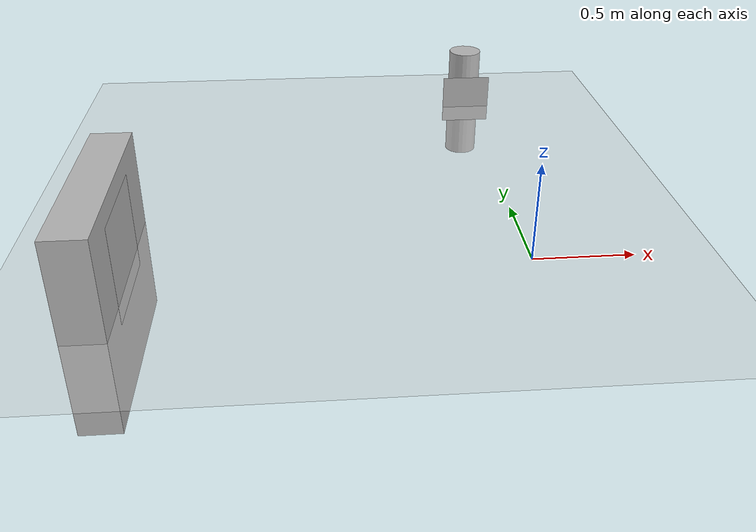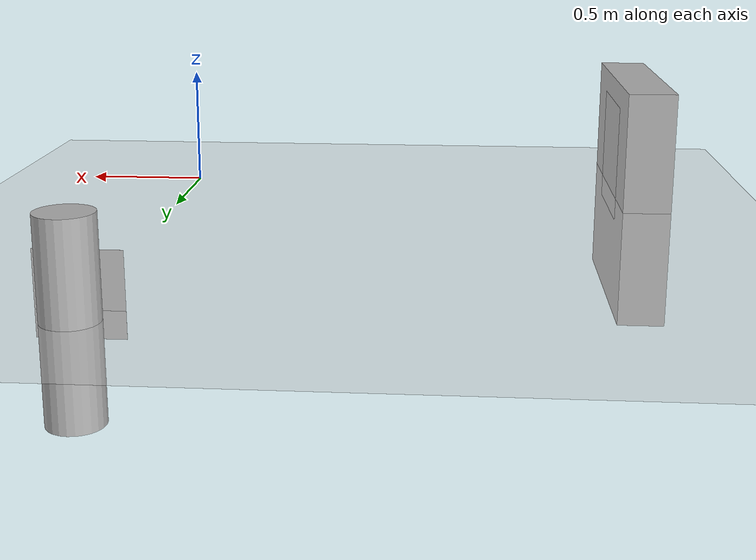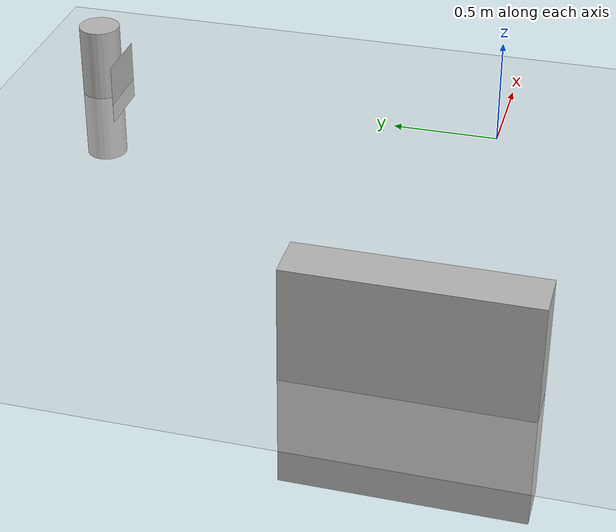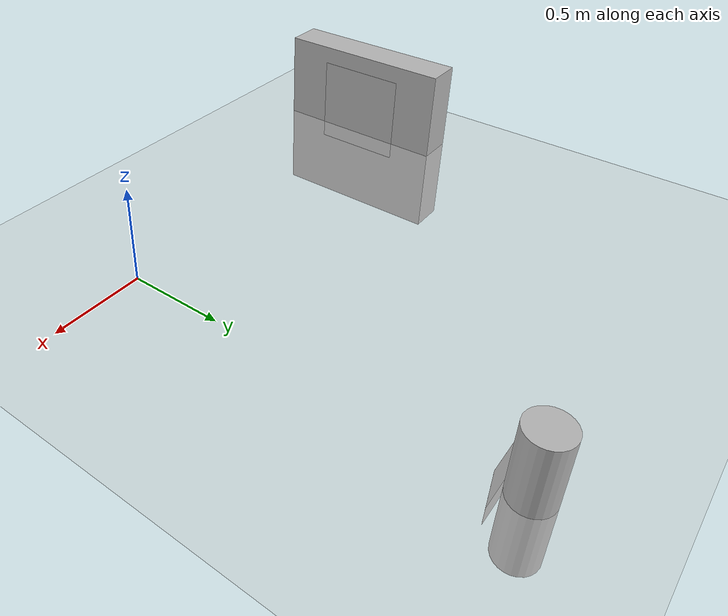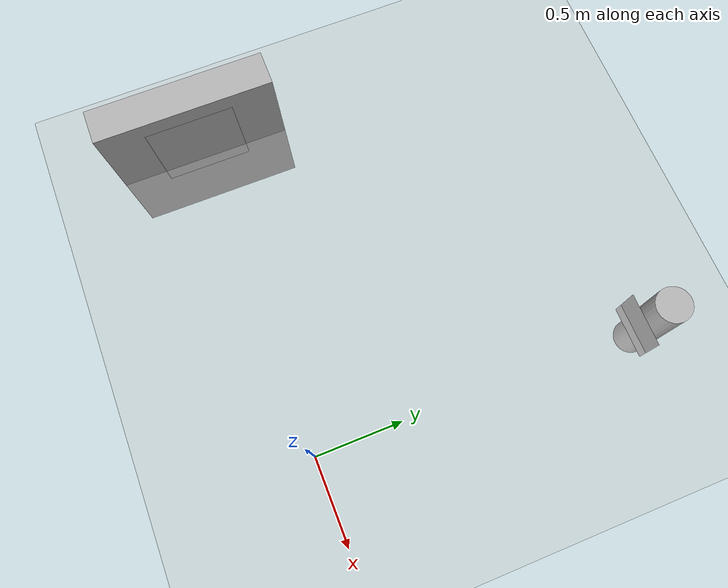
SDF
<sdf version='1.6'>
  <world name='default'>
    <include>
      <uri>model://sun</uri>
    </include>
    <include>
      <uri>model://ground_plane</uri>
    </include>
    <include>
      <name>aruco_marker1</name>
      <uri>model://aruco_marker_box</uri>
      <pose frame=''>-2 0 0 0 -0 0</pose>
    </include>
    <include>
      <name>aruco_marker2</name>
      <uri>model://aruco_marker_cylinder</uri>
      <pose frame=''>0 2 0 0 -0 -1.57</pose>
    </include>

    <plugin name="ros_link_attacher_plugin" filename="libgazebo_ros_link_attacher.so" />

    <gui fullscreen='0'>
      <camera name='user_camera'>
        <pose frame=''>12.804 6.59761 20.6782 0 0.963643 -2.65182</pose>
        <view_controller>orbit</view_controller>
        <projection_type>perspective</projection_type>
      </camera>
    </gui>
  </world>
</sdf>

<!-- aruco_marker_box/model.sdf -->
<sdf version="1.6">
  <model name="aruco_marker">
    <link name="link">
      <inertial>
        <pose>0 0 0 0 0 0</pose>
        <mass>1</mass>
        <inertia>
          <ixx>0.083</ixx>
          <ixy>0.0</ixy>
          <ixz>0.0</ixz>
          <iyy>0.083</iyy>
          <iyz>0.0</iyz>
          <izz>0.083</izz>
        </inertia>
      </inertial>
      <visual name="front_visual">
        <pose>0.1005 0 0.15 0 0 0</pose>
        <geometry>
          <box>
            <size>0.0001 0.50 0.50</size>
          </box>
        </geometry>
        <material>
          <script>
            <uri>model://aruco_marker_box/materials/scripts</uri>
            <uri>model://aruco_marker_box/materials/textures</uri>
            <name>Marker</name>
          </script>
        </material>
      </visual>
      <!-- Hide the marker from the back -->
      <visual name="rear_visual">
        <pose>-0.00005 0 0 0 0 0</pose>
        <geometry>
          <box>
            <size>0.20 1.0 1.0</size>
          </box>
        </geometry>
      </visual>
      <collision name="collision">
        <pose>0 0 0 0 0 0</pose>
        <geometry>
          <box>
            <size>0.20 0.40 0.50</size>
          </box>
        </geometry>
      </collision>
    </link>
  </model>
</sdf>

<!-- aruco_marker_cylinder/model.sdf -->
<sdf version="1.6">
  <model name="aruco_marker">
    <link name="link">
      <inertial>
        <pose>0 0 0 0 0 0</pose>
        <mass>1</mass>
        <inertia>
          <ixx>0.083</ixx>
          <ixy>0.0</ixy>
          <ixz>0.0</ixz>
          <iyy>0.083</iyy>
          <iyz>0.0</iyz>
          <izz>0.083</izz>
        </inertia>
      </inertial>
      <visual name="front_visual">
        <pose>0.105 0 0.05 0 0 0</pose>
        <geometry>
          <box>
            <size>0.0001 0.30 0.30</size>
          </box>
        </geometry>
        <material>
          <script>
            <uri>model://aruco_marker_cylinder/materials/scripts</uri>
            <uri>model://aruco_marker_cylinder/materials/textures</uri>
            <name>Marker2</name>
          </script>
        </material>
      </visual>
      <!-- Hide the marker from the back -->
      <visual name="rear_visual">
        <pose>0 0 0 0 0 0</pose>
        <geometry>
            <cylinder>
              <radius>0.1</radius>
              <length> 0.7 </length>
            </cylinder>
        </geometry>
      </visual>
      <collision name="collision">
        <pose>0 0 0 0 0 0</pose>
        <geometry>
            <cylinder>
              <radius>0.1</radius>
              <length>0.7</length>
            </cylinder>
        </geometry>
      </collision>
    </link>
  </model>
</sdf>
เขียนถึง วรเมธี จิตนากร
